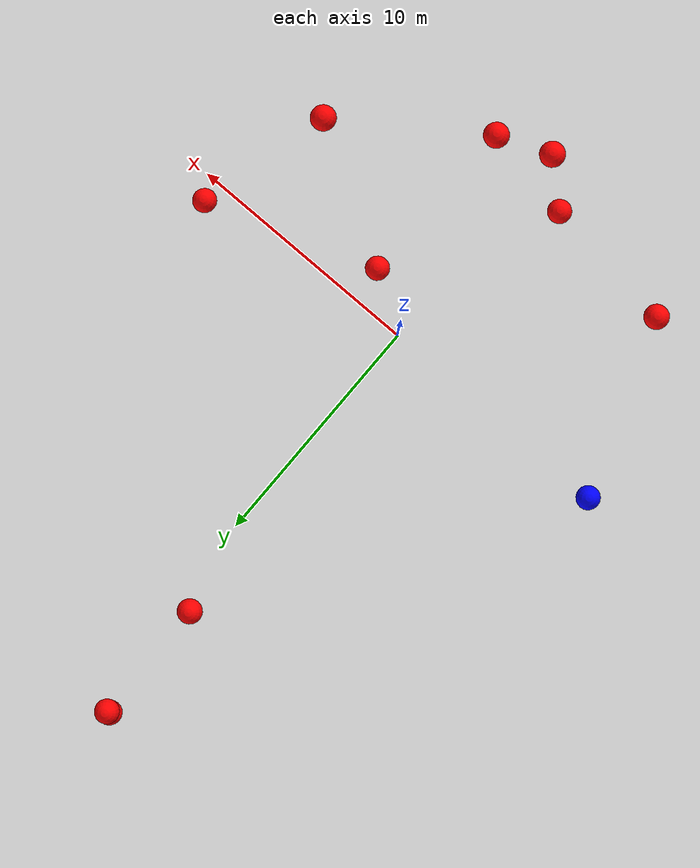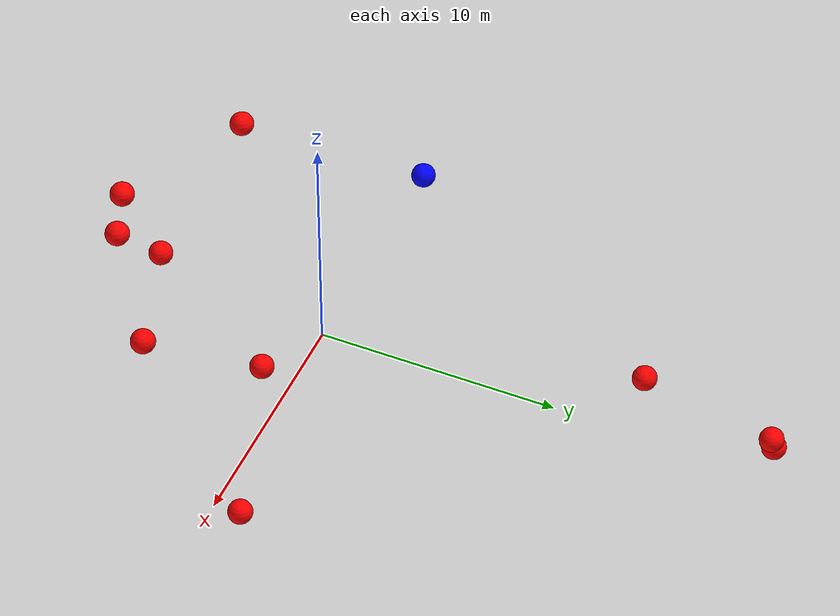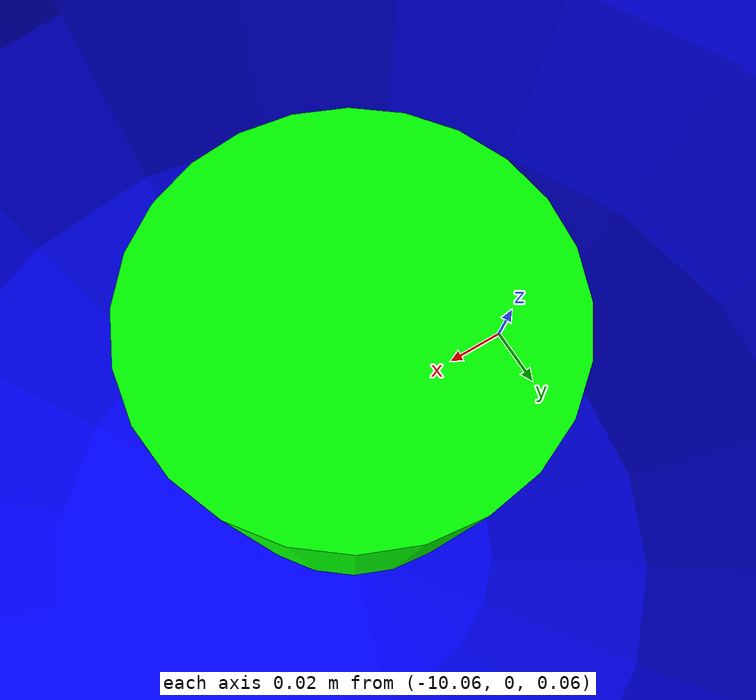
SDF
<?xml version="1.0" ?>
<sdf version="1.8">
    <world name="3d_world">
        <physics name="1ms" type="ode">
            <max_step_size>0.001</max_step_size>
            <real_time_factor>1.0</real_time_factor>
            <real_time_update_rate>1000.0</real_time_update_rate>
        </physics>
        <gravity>0 0 0</gravity>

        <plugin
            filename="gz-sim-physics-system"
            name="gz::sim::v8::systems::Physics">
        </plugin>
        <plugin
            filename="libignition-gazebo-user-commands-system.so"
            name="ignition::gazebo::systems::UserCommands">
        </plugin>
        <plugin
            filename="gz-sim-scene-broadcaster-system"
            name="gz::sim::systems::SceneBroadcaster">
        </plugin>
        <plugin
            filename="gz-sim-sensors-system"
            name="gz::sim::systems::Sensors">
            <render_engine>ogre2</render_engine>
        </plugin>

        <light type="directional" name="sun">
            <cast_shadows>true</cast_shadows>
            <pose>0 0 10 0 0 0</pose>
            <diffuse>0.8 0.8 0.8 1</diffuse>
            <specular>0.2 0.2 0.2 1</specular>
            <attenuation>
                <range>1000</range>
                <constant>0.9</constant>
                <linear>0.01</linear>
                <quadratic>0.001</quadratic>
            </attenuation>
            <direction>-0.5 0.1 -0.9</direction>
        </light>

        <!-- AGENTE -->
        <model name='agente' canonical_link='chassis'>
            <pose relative_to='world'>-10.0 0 0.0 0 0 0</pose>
            <link name='chassis'>
                <pose relative_to='__model__'>0.0 0 0.0 0 0 0</pose>
                <inertial>
                    <mass>1.14395</mass>
                    <inertia>
                        <ixx>0.095329</ixx>
                        <ixy>0</ixy>
                        <ixz>0</ixz>
                        <iyy>0.381317</iyy>
                        <iyz>0</iyz>
                        <izz>0.476646</izz>
                    </inertia>
                </inertial>
                <visual name='visual'>
                    <geometry>
                        <sphere>
                            <radius>0.5</radius>
                        </sphere>
                    </geometry>
                    <material>
                        <ambient>0.0 0.0 1.0 1</ambient>
                        <diffuse>0.0 0.0 1.0 1</diffuse>
                        <specular>0.0 0.0 1.0 1</specular>
                    </material>
                </visual>
                <collision name='collision'>
                    <geometry>
                        <sphere>
                            <radius>0.5</radius>
                        </sphere>
                    </geometry>
                </collision>
                <enable_gravity>false</enable_gravity>
            </link>

            <link name='lidar_link'>
                <pose relative_to='chassis'>0.0 0 0.1 0 0 0</pose>
                <inertial>
                    <mass>0.1</mass>
                    <inertia>
                        <ixx>0.000166667</ixx>
                        <iyy>0.000166667</iyy>
                        <izz>0.000166667</izz>
                    </inertia>
                </inertial>
                <collision name='collision'>
                    <geometry>
                        <cylinder>
                            <radius>0.05</radius>
                            <length>0.1</length>
                        </cylinder>
                    </geometry>
                </collision>
                <visual name='visual'>
                    <geometry>
                        <cylinder>
                            <radius>0.05</radius>
                            <length>0.1</length>
                        </cylinder>
                    </geometry>
                    <material>
                        <ambient>0.0 1.0 0.0 1</ambient>
                        <diffuse>0.0 1.0 0.0 1</diffuse>
                        <specular>0.0 1.0 0.0 1</specular>
                    </material>
                </visual>
                <sensor name="lidar" type="gpu_lidar">
                    <topic>scan</topic>
                    <update_rate>10</update_rate>
                    <lidar>
                        <scan>
                            <horizontal>
                                <samples>5000</samples>
                                <resolution>1</resolution>
                                <min_angle>-3.14159</min_angle>
                                <max_angle>3.14159</max_angle>
                            </horizontal>
                        </scan>
                        <range>
                            <min>0.1</min>
                            <max>10.0</max>
                            <resolution>0.01</resolution>
                        </range>
                    </lidar>
                    <visualize>true</visualize>
                    <always_on>true</always_on>
                    <update_rate>10</update_rate>
                    <pose_frame>lidar</pose_frame>
                </sensor>
                <enable_gravity>false</enable_gravity>
            </link>

            <joint name="lidar_joint" type="fixed">
                <parent>chassis</parent>
                <child>lidar_link</child>
            </joint>

            <plugin
                filename="ignition-gazebo-joint-state-publisher-system"
                name="ignition::gazebo::systems::JointStatePublisher">
            </plugin>
            <plugin
                filename="ignition-gazebo-odometry-publisher-system"
                name="ignition::gazebo::systems::OdometryPublisher">
                <dimensions>3</dimensions>
            </plugin>
            <plugin
                filename="ignition-gazebo-velocity-control-system"
                name="ignition::gazebo::systems::VelocityControl">
                <initial_linear>0.0 0 0</initial_linear>
                <initial_angular>0 0 0.0</initial_angular>
            </plugin>
            <plugin
                filename="libignition-gazebo-pose-publisher-system.so"
                name="ignition::gazebo::systems::PosePublisher">
                <topic>/agente/pose</topic>
                <frame_id>agente</frame_id>
                <update_rate>30</update_rate>
            </plugin>
        </model>

        <!-- OBSTACLE 1 -->
        <model name='obstacle_1' canonical_link='obstacle'>
            <static>false</static>
            <pose relative_to='world'>1.94 -7.91 4.30 0 0 0</pose>
            <link name='obstacle'>
                <pose relative_to='__model__'>0.0 0 0.0 0 0 0</pose>
                <visual name='visual'>
                    <geometry>
                        <sphere>
                            <radius>0.50</radius>
                        </sphere>
                    </geometry>
                    <material>
                        <ambient>1.0 0.0 0.0 1</ambient>
                        <diffuse>1.0 0.0 0.0 1</diffuse>
                        <specular>1.0 0.0 0.0 1</specular>
                    </material>
                </visual>
                <collision name='collision'>
                    <geometry>
                        <sphere>
                            <radius>0.50</radius>
                        </sphere>
                    </geometry>
                </collision>
                <enable_gravity>false</enable_gravity>
            </link>

            <plugin
                filename="ignition-gazebo-velocity-control-system"
                name="ignition::gazebo::systems::VelocityControl">
                <initial_linear>0.39 1.40 -0.76</initial_linear>
                <initial_angular>0 0 0</initial_angular>
            </plugin>

            <plugin
                filename="ignition-gazebo-odometry-publisher-system"
                name="ignition::gazebo::systems::OdometryPublisher">
                <dimensions>3</dimensions>
            </plugin>
        </model>

        <!-- OBSTACLE 2 -->
        <model name='obstacle_2' canonical_link='obstacle'>
            <static>false</static>
            <pose relative_to='world'>-0.84 13.42 2.34 0 0 0</pose>
            <link name='obstacle'>
                <pose relative_to='__model__'>0.0 0 0.0 0 0 0</pose>
                <visual name='visual'>
                    <geometry>
                        <sphere>
                            <radius>0.50</radius>
                        </sphere>
                    </geometry>
                    <material>
                        <ambient>1.0 0.0 0.0 1</ambient>
                        <diffuse>1.0 0.0 0.0 1</diffuse>
                        <specular>1.0 0.0 0.0 1</specular>
                    </material>
                </visual>
                <collision name='collision'>
                    <geometry>
                        <sphere>
                            <radius>0.50</radius>
                        </sphere>
                    </geometry>
                </collision>
                <enable_gravity>false</enable_gravity>
            </link>

            <plugin
                filename="ignition-gazebo-velocity-control-system"
                name="ignition::gazebo::systems::VelocityControl">
                <initial_linear>0.46 -1.92 -0.33</initial_linear>
                <initial_angular>0 0 0</initial_angular>
            </plugin>

            <plugin
                filename="ignition-gazebo-odometry-publisher-system"
                name="ignition::gazebo::systems::OdometryPublisher">
                <dimensions>3</dimensions>
            </plugin>
        </model>

        <!-- OBSTACLE 3 -->
        <model name='obstacle_3' canonical_link='obstacle'>
            <static>false</static>
            <pose relative_to='world'>-1.00 18.81 0.58 0 0 0</pose>
            <link name='obstacle'>
                <pose relative_to='__model__'>0.0 0 0.0 0 0 0</pose>
                <visual name='visual'>
                    <geometry>
                        <sphere>
                            <radius>0.50</radius>
                        </sphere>
                    </geometry>
                    <material>
                        <ambient>1.0 0.0 0.0 1</ambient>
                        <diffuse>1.0 0.0 0.0 1</diffuse>
                        <specular>1.0 0.0 0.0 1</specular>
                    </material>
                </visual>
                <collision name='collision'>
                    <geometry>
                        <sphere>
                            <radius>0.50</radius>
                        </sphere>
                    </geometry>
                </collision>
                <enable_gravity>false</enable_gravity>
            </link>

            <plugin
                filename="ignition-gazebo-velocity-control-system"
                name="ignition::gazebo::systems::VelocityControl">
                <initial_linear>0.08 -2.00 -0.06</initial_linear>
                <initial_angular>0 0 0</initial_angular>
            </plugin>

            <plugin
                filename="ignition-gazebo-odometry-publisher-system"
                name="ignition::gazebo::systems::OdometryPublisher">
                <dimensions>3</dimensions>
            </plugin>
        </model>

        <!-- OBSTACLE 4 -->
        <model name='obstacle_4' canonical_link='obstacle'>
            <static>false</static>
            <pose relative_to='world'>-7.16 -6.85 2.79 0 0 0</pose>
            <link name='obstacle'>
                <pose relative_to='__model__'>0.0 0 0.0 0 0 0</pose>
                <visual name='visual'>
                    <geometry>
                        <sphere>
                            <radius>0.50</radius>
                        </sphere>
                    </geometry>
                    <material>
                        <ambient>1.0 0.0 0.0 1</ambient>
                        <diffuse>1.0 0.0 0.0 1</diffuse>
                        <specular>1.0 0.0 0.0 1</specular>
                    </material>
                </visual>
                <collision name='collision'>
                    <geometry>
                        <sphere>
                            <radius>0.50</radius>
                        </sphere>
                    </geometry>
                </collision>
                <enable_gravity>false</enable_gravity>
            </link>

            <plugin
                filename="ignition-gazebo-velocity-control-system"
                name="ignition::gazebo::systems::VelocityControl">
                <initial_linear>1.47 1.25 -0.51</initial_linear>
                <initial_angular>0 0 0</initial_angular>
            </plugin>

            <plugin
                filename="ignition-gazebo-odometry-publisher-system"
                name="ignition::gazebo::systems::OdometryPublisher">
                <dimensions>3</dimensions>
            </plugin>
        </model>

        <!-- OBSTACLE 5 -->
        <model name='obstacle_5' canonical_link='obstacle'>
            <static>false</static>
            <pose relative_to='world'>9.47 0.86 -0.48 0 0 0</pose>
            <link name='obstacle'>
                <pose relative_to='__model__'>0.0 0 0.0 0 0 0</pose>
                <visual name='visual'>
                    <geometry>
                        <sphere>
                            <radius>0.50</radius>
                        </sphere>
                    </geometry>
                    <material>
                        <ambient>1.0 0.0 0.0 1</ambient>
                        <diffuse>1.0 0.0 0.0 1</diffuse>
                        <specular>1.0 0.0 0.0 1</specular>
                    </material>
                </visual>
                <collision name='collision'>
                    <geometry>
                        <sphere>
                            <radius>0.50</radius>
                        </sphere>
                    </geometry>
                </collision>
                <enable_gravity>false</enable_gravity>
            </link>

            <plugin
                filename="ignition-gazebo-velocity-control-system"
                name="ignition::gazebo::systems::VelocityControl">
                <initial_linear>-1.99 -0.13 0.07</initial_linear>
                <initial_angular>0 0 0</initial_angular>
            </plugin>

            <plugin
                filename="ignition-gazebo-odometry-publisher-system"
                name="ignition::gazebo::systems::OdometryPublisher">
                <dimensions>3</dimensions>
            </plugin>
        </model>

        <!-- OBSTACLE 6 -->
        <model name='obstacle_6' canonical_link='obstacle'>
            <static>false</static>
            <pose relative_to='world'>-0.12 -8.72 4.32 0 0 0</pose>
            <link name='obstacle'>
                <pose relative_to='__model__'>0.0 0 0.0 0 0 0</pose>
                <visual name='visual'>
                    <geometry>
                        <sphere>
                            <radius>0.50</radius>
                        </sphere>
                    </geometry>
                    <material>
                        <ambient>1.0 0.0 0.0 1</ambient>
                        <diffuse>1.0 0.0 0.0 1</diffuse>
                        <specular>1.0 0.0 0.0 1</specular>
                    </material>
                </visual>
                <collision name='collision'>
                    <geometry>
                        <sphere>
                            <radius>0.50</radius>
                        </sphere>
                    </geometry>
                </collision>
                <enable_gravity>false</enable_gravity>
            </link>

            <plugin
                filename="ignition-gazebo-velocity-control-system"
                name="ignition::gazebo::systems::VelocityControl">
                <initial_linear>0.57 1.70 -0.84</initial_linear>
                <initial_angular>0 0 0</initial_angular>
            </plugin>

            <plugin
                filename="ignition-gazebo-odometry-publisher-system"
                name="ignition::gazebo::systems::OdometryPublisher">
                <dimensions>3</dimensions>
            </plugin>
        </model>

        <!-- OBSTACLE 7 -->
        <model name='obstacle_7' canonical_link='obstacle'>
            <static>false</static>
            <pose relative_to='world'>7.23 -4.15 4.77 0 0 0</pose>
            <link name='obstacle'>
                <pose relative_to='__model__'>0.0 0 0.0 0 0 0</pose>
                <visual name='visual'>
                    <geometry>
                        <sphere>
                            <radius>0.50</radius>
                        </sphere>
                    </geometry>
                    <material>
                        <ambient>1.0 0.0 0.0 1</ambient>
                        <diffuse>1.0 0.0 0.0 1</diffuse>
                        <specular>1.0 0.0 0.0 1</specular>
                    </material>
                </visual>
                <collision name='collision'>
                    <geometry>
                        <sphere>
                            <radius>0.50</radius>
                        </sphere>
                    </geometry>
                </collision>
                <enable_gravity>false</enable_gravity>
            </link>

            <plugin
                filename="ignition-gazebo-velocity-control-system"
                name="ignition::gazebo::systems::VelocityControl">
                <initial_linear>-0.67 0.76 -0.88</initial_linear>
                <initial_angular>0 0 0</initial_angular>
            </plugin>

            <plugin
                filename="ignition-gazebo-odometry-publisher-system"
                name="ignition::gazebo::systems::OdometryPublisher">
                <dimensions>3</dimensions>
            </plugin>
        </model>

        <!-- OBSTACLE 8 -->
        <model name='obstacle_8' canonical_link='obstacle'>
            <static>false</static>
            <pose relative_to='world'>-0.89 18.73 1.08 0 0 0</pose>
            <link name='obstacle'>
                <pose relative_to='__model__'>0.0 0 0.0 0 0 0</pose>
                <visual name='visual'>
                    <geometry>
                        <sphere>
                            <radius>0.50</radius>
                        </sphere>
                    </geometry>
                    <material>
                        <ambient>1.0 0.0 0.0 1</ambient>
                        <diffuse>1.0 0.0 0.0 1</diffuse>
                        <specular>1.0 0.0 0.0 1</specular>
                    </material>
                </visual>
                <collision name='collision'>
                    <geometry>
                        <sphere>
                            <radius>0.50</radius>
                        </sphere>
                    </geometry>
                </collision>
                <enable_gravity>false</enable_gravity>
            </link>

            <plugin
                filename="ignition-gazebo-velocity-control-system"
                name="ignition::gazebo::systems::VelocityControl">
                <initial_linear>-0.41 -1.95 -0.11</initial_linear>
                <initial_angular>0 0 0</initial_angular>
            </plugin>

            <plugin
                filename="ignition-gazebo-odometry-publisher-system"
                name="ignition::gazebo::systems::OdometryPublisher">
                <dimensions>3</dimensions>
            </plugin>
        </model>

        <!-- OBSTACLE 9 -->
        <model name='obstacle_9' canonical_link='obstacle'>
            <static>false</static>
            <pose relative_to='world'>-1.71 -8.01 -0.15 0 0 0</pose>
            <link name='obstacle'>
                <pose relative_to='__model__'>0.0 0 0.0 0 0 0</pose>
                <visual name='visual'>
                    <geometry>
                        <sphere>
                            <radius>0.50</radius>
                        </sphere>
                    </geometry>
                    <material>
                        <ambient>1.0 0.0 0.0 1</ambient>
                        <diffuse>1.0 0.0 0.0 1</diffuse>
                        <specular>1.0 0.0 0.0 1</specular>
                    </material>
                </visual>
                <collision name='collision'>
                    <geometry>
                        <sphere>
                            <radius>0.50</radius>
                        </sphere>
                    </geometry>
                </collision>
                <enable_gravity>false</enable_gravity>
            </link>

            <plugin
                filename="ignition-gazebo-velocity-control-system"
                name="ignition::gazebo::systems::VelocityControl">
                <initial_linear>-0.18 1.99 0.04</initial_linear>
                <initial_angular>0 0 0</initial_angular>
            </plugin>

            <plugin
                filename="ignition-gazebo-odometry-publisher-system"
                name="ignition::gazebo::systems::OdometryPublisher">
                <dimensions>3</dimensions>
            </plugin>
        </model>

        <!-- OBSTACLE 10 -->
        <model name='obstacle_10' canonical_link='obstacle'>
            <static>false</static>
            <pose relative_to='world'>2.38 -1.55 -0.19 0 0 0</pose>
            <link name='obstacle'>
                <pose relative_to='__model__'>0.0 0 0.0 0 0 0</pose>
                <visual name='visual'>
                    <geometry>
                        <sphere>
                            <radius>0.50</radius>
                        </sphere>
                    </geometry>
                    <material>
                        <ambient>1.0 0.0 0.0 1</ambient>
                        <diffuse>1.0 0.0 0.0 1</diffuse>
                        <specular>1.0 0.0 0.0 1</specular>
                    </material>
                </visual>
                <collision name='collision'>
                    <geometry>
                        <sphere>
                            <radius>0.50</radius>
                        </sphere>
                    </geometry>
                </collision>
                <enable_gravity>false</enable_gravity>
            </link>

            <plugin
                filename="ignition-gazebo-velocity-control-system"
                name="ignition::gazebo::systems::VelocityControl">
                <initial_linear>-0.87 0.42 0.05</initial_linear>
                <initial_angular>0 0 0</initial_angular>
            </plugin>

            <plugin
                filename="ignition-gazebo-odometry-publisher-system"
                name="ignition::gazebo::systems::OdometryPublisher">
                <dimensions>3</dimensions>
            </plugin>
        </model>

    </world>
</sdf>
